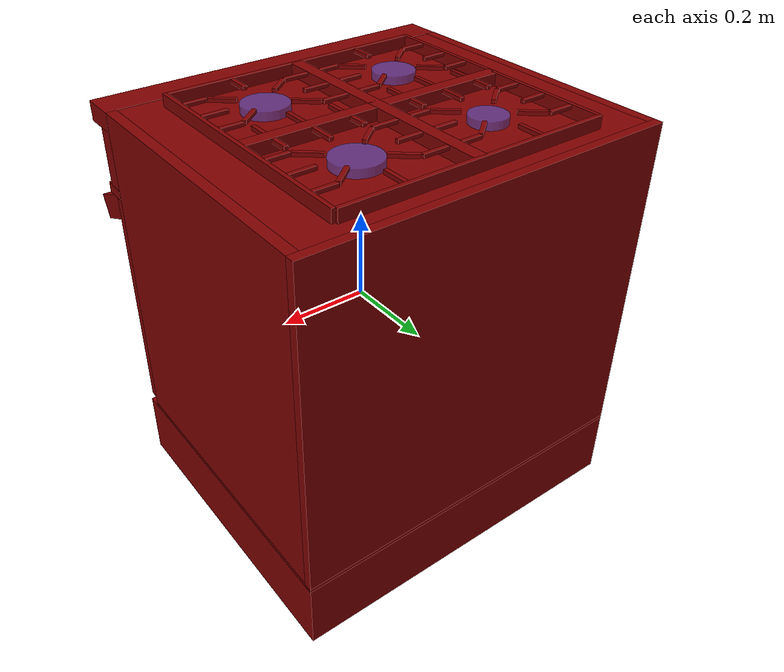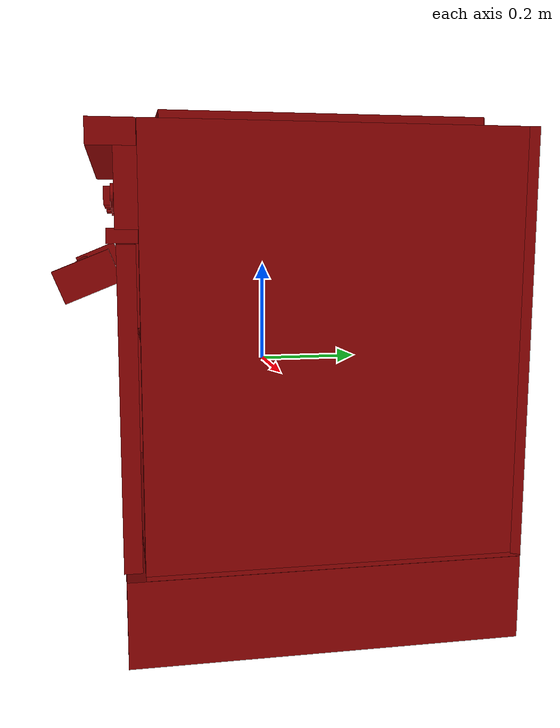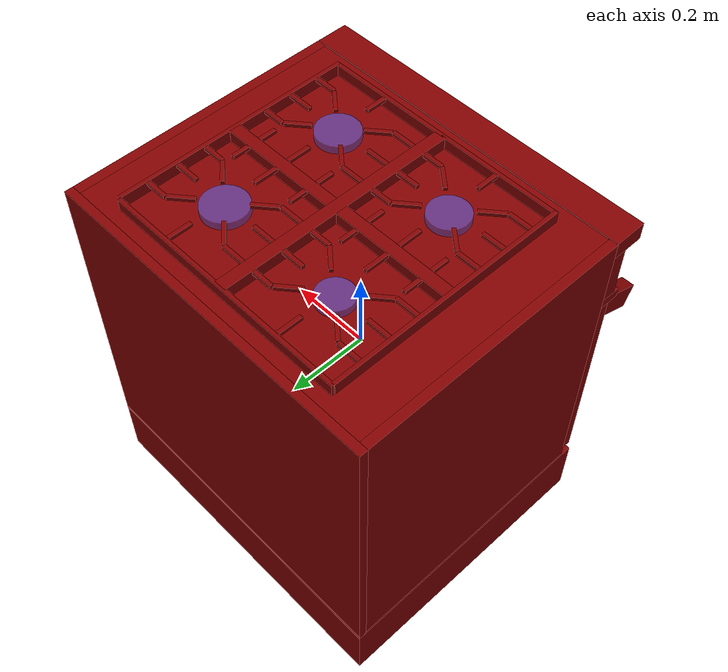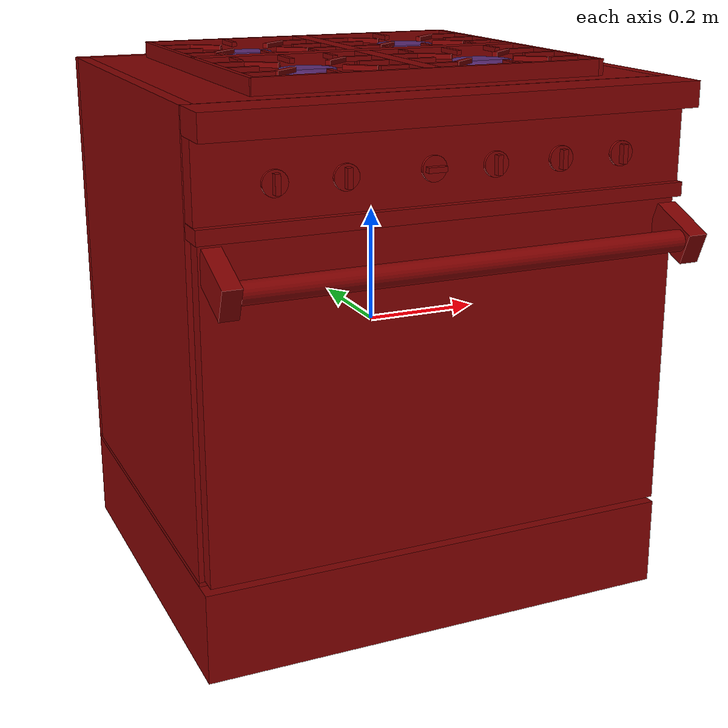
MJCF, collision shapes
<?xml version='1.0' encoding='UTF-8'?>
<mujoco model="model">
  <option timestep="0.002" gravity="0.0 0.0 -9.81"/>
  <compiler angle="radian"/>
  <asset>
    <mesh file="visuals/knob_front_left.obj" name="knob_front_left_vis"/>
    <mesh file="visuals/knob_front_right.obj" name="knob_front_right_vis"/>
    <mesh file="visuals/knob_rear_left.obj" name="knob_rear_left_vis"/>
    <mesh file="visuals/knob_rear_right.obj" name="knob_rear_right_vis"/>
    <mesh file="visuals/Body001.obj" name="Body001_vis"/>
    <mesh file="visuals/Door001.obj" name="Door001_vis"/>
    <mesh file="visuals/Door001_Clear.obj" name="Door001_Clear_vis"/>
    <mesh file="visuals/Knob001.obj" name="Knob001_vis"/>
    <mesh file="visuals/Knob002.obj" name="Knob002_vis"/>
    <mesh file="visuals/Shelf001.obj" name="Shelf001_vis"/>
    <texture file="visuals/T_BC001.png" name="Body001_material" type="2d"/>
    <material name="Body001_material" rgba="1 1 1 1.0" texture="Body001_material" shininess="2" specular="2"/>
    <texture file="visuals/T_BC001.png" name="knob_front_left_material" type="2d"/>
    <material name="knob_front_left_material" rgba="1 1 1 1.0" texture="knob_front_left_material" shininess="5" specular="5"/>
    <texture file="visuals/T_BC001.png" name="knob_front_right_material" type="2d"/>
    <material name="knob_front_right_material" rgba="1 1 1 1.0" texture="knob_front_right_material" shininess="5" specular="5"/>
    <texture file="visuals/T_BC001.png" name="knob_rear_left_material" type="2d"/>
    <material name="knob_rear_left_material" rgba="1 1 1 1.0" texture="knob_rear_left_material" shininess="5" specular="5"/>
    <texture file="visuals/T_BC001.png" name="knob_rear_right_material" type="2d"/>
    <material name="knob_rear_right_material" rgba="1 1 1 1.0" texture="knob_rear_right_material" shininess="5" specular="5"/>
    <texture file="visuals/T_BC001.png" name="Door001_material" type="2d"/>
    <material name="Door001_material" rgba="1 1 1 1.0" texture="Door001_material" shininess="0.5" specular="0.3"/>
    <material name="Door001_Clear_material" rgba="0.03637736663222313 0.03637736663222313 0.03637736663222313 0.75" shininess="0.5962963700294495" specular="0.3103448502657381"/>
    <texture file="visuals/T_BC001.png" name="Knob001_material" type="2d"/>
    <material name="Knob001_material" rgba="1 1 1 1.0" texture="Knob001_material" shininess="5" specular="5"/>
    <texture file="visuals/T_BC001.png" name="Knob002_material" type="2d"/>
    <material name="Knob002_material" rgba="1 1 1 1.0" texture="Knob002_material" shininess="5" specular="5"/>
    <texture file="visuals/T_BC001.png" name="Shelf001_material" type="2d"/>
    <material name="Shelf001_material" rgba="1 1 1 1.0" texture="Shelf001_material" shininess="15" specular="15"/>
  </asset>
  <default>
    <default class="visual">
      <geom conaffinity="0" contype="0" group="1" type="mesh"/>
    </default>
    <default class="collision">
      <geom group="0" rgba="0.5 0 0 0.5"/>
    </default>
    <default class="spawn">
      <geom group="0" rgba="1 1 1 0.5" contype="0" conaffinity="0"/>
      <site group="0" rgba="1 1 1 0.5"/>
    </default>
    <default class="region">
      <geom group="1" conaffinity="0" contype="0" rgba="0 1 0 0"/>
    </default>
  </default>
  <worldbody>
    <body>
      <body name="object">
        <geom mesh="Body001_vis" type="mesh" solimp="0.998 0.998 0.001" solref="0.001 1" friction="0.95 0.3 0.1" class="visual" material="Body001_material"/>
        <geom class="collision" type="box" pos="0.000378 0.049515 -0.388856" size="0.41547325253486633 0.35028234124183655 0.0773010328412056" quat="1.0 0.0 0.0 0.0" density="1000.0"/>
        <geom class="collision" type="box" pos="0.001387 -0.287103 0.333889" size="0.4144640564918518 0.018988726660609245 0.06398481130599976" quat="1.0 0.0 0.0 0.0" density="1000.0"/>
        <geom class="collision" type="box" pos="-0.000711 0.057559 0.343548" size="0.39315736293792725 0.3247782289981842 0.09669910371303558" quat="1.0 0.0 0.0 0.0" density="1000.0"/>
        <geom class="collision" type="box" pos="-0.403659 0.055687 0.068292" size="0.011437241919338703 0.32465922832489014 0.3719550669193268" quat="1.0 0.0 0.0 0.0" density="1000.0"/>
        <geom class="collision" type="box" pos="0.000378 0.389921 0.064592" size="0.41547325253486633 0.009875659830868244 0.37565553188323975" quat="1.0 0.0 0.0 0.0" density="1000.0"/>
        <geom class="collision" type="box" pos="0.000986 -0.309003 0.418958" size="0.4148644208908081 0.03909192979335785 0.02129073068499565" quat="1.0 0.0 0.0 0.0" density="1000.0"/>
        <geom class="collision" type="box" pos="0.000986 -0.294806 0.260053" size="0.4148644208908081 0.02489509992301464 0.011899310164153576" quat="1.0 0.0 0.0 0.0" density="1000.0"/>
        <geom class="collision" type="box" pos="0.403813 0.055687 0.068293" size="0.012038080021739006 0.32465511560440063 0.3719540536403656" quat="1.0 0.0 0.0 0.0" density="1000.0"/>
        <geom class="collision" type="box" pos="-0.375798 0.074226 0.000232" size="0.019609661772847176 0.30704760551452637 0.012386194430291653" quat="1.0 0.0 0.0 0.0" density="1000.0"/>
        <geom class="collision" type="box" pos="0.376623 0.074226 0.000232" size="0.019609661772847176 0.30704760551452637 0.012386194430291653" quat="1.0 0.0 0.0 0.0" density="1000.0"/>
        <geom class="collision" type="box" pos="0.000378 0.065899 -0.307179" size="0.41547325253486633 0.33389797806739807 0.004099471494555473" quat="1.0 0.0 0.0 0.0" density="1000.0"/>
        <geom class="collision" type="box" pos="-0.292757 0.057559 0.453214" size="0.004482975695282221 0.28736037015914917 0.01421328354626894" quat="1.0 0.0 0.0 0.0" density="1000.0"/>
        <geom class="collision" type="box" pos="0.306405 0.057559 0.453214" size="0.004482975695282221 0.28736037015914917 0.01421328354626894" quat="1.0 0.0 0.0 0.0" density="1000.0"/>
        <geom class="collision" type="box" pos="0.003568 0.346286 0.453214" size="0.004482975695282221 0.2986479103565216 0.01421328354626894" quat="0.70710688829422 0.0 0.0 -0.7071066498756409" density="1000.0"/>
        <geom class="collision" type="box" pos="0.003568 -0.225523 0.453214" size="0.004482975695282221 0.2986479103565216 0.01421328354626894" quat="0.70710688829422 0.0 0.0 -0.7071066498756409" density="1000.0"/>
        <geom class="collision" type="box" pos="0.003568 0.060472 0.453214" size="0.014194725081324577 0.2986479103565216 0.01421328354626894" quat="0.70710688829422 0.0 0.0 -0.7071066498756409" density="1000.0"/>
        <geom class="collision" type="box" pos="0.003568 0.060472 0.453214" size="0.014194725081324577 0.28471454977989197 0.01421328354626894" quat="7.549790126404332e-08 0.0 0.0 -1.0" density="1000.0"/>
        <geom class="collision" type="box" pos="-0.231439 0.059600 0.462512" size="0.004482975695282221 0.05542557314038277 0.0040606227703392506" quat="1.0 0.0 0.0 0.0" density="1000.0"/>
        <geom class="collision" type="box" pos="-0.064352 0.059600 0.462512" size="0.004482975695282221 0.05542557314038277 0.0040606227703392506" quat="1.0 0.0 0.0 0.0" density="1000.0"/>
        <geom class="collision" type="box" pos="0.076505 0.059600 0.462512" size="0.004482975695282221 0.05542557314038277 0.0040606227703392506" quat="1.0 0.0 0.0 0.0" density="1000.0"/>
        <geom class="collision" type="box" pos="0.245171 0.059600 0.462512" size="0.004482975695282221 0.05542557314038277 0.0040606227703392506" quat="1.0 0.0 0.0 0.0" density="1000.0"/>
        <geom class="collision" type="box" pos="0.161141 0.059600 0.462512" size="0.004482975695282221 0.07093368470668793 0.0040606227703392506" quat="1.0 0.0 0.0 0.0" density="1000.0"/>
        <geom class="collision" type="box" pos="-0.147173 0.059600 0.462512" size="0.004482975695282221 0.07093368470668793 0.0040606227703392506" quat="1.0 0.0 0.0 0.0" density="1000.0"/>
        <geom class="collision" type="box" pos="0.161141 0.314231 0.462512" size="0.004482975695282221 0.028777193278074265 0.0040606227703392506" quat="1.0 0.0 0.0 0.0" density="1000.0"/>
        <geom class="collision" type="box" pos="-0.147173 0.314231 0.462512" size="0.004482975695282221 0.028777193278074265 0.0040606227703392506" quat="1.0 0.0 0.0 0.0" density="1000.0"/>
        <geom class="collision" type="box" pos="0.161141 -0.198479 0.462512" size="0.004482975695282221 0.028777193278074265 0.0040606227703392506" quat="1.0 0.0 0.0 0.0" density="1000.0"/>
        <geom class="collision" type="box" pos="-0.147173 -0.198479 0.462512" size="0.004482975695282221 0.028777193278074265 0.0040606227703392506" quat="1.0 0.0 0.0 0.0" density="1000.0"/>
        <geom class="collision" type="box" pos="-0.262084 -0.089662 0.462512" size="0.004482975695282221 0.028777193278074265 0.0040606227703392506" quat="0.70710688829422 0.0 0.0 -0.7071066498756409" density="1000.0"/>
        <geom class="collision" type="box" pos="0.272897 -0.089662 0.462512" size="0.004482975695282221 0.028777193278074265 0.0040606227703392506" quat="0.70710688829422 0.0 0.0 -0.7071066498756409" density="1000.0"/>
        <geom class="collision" type="box" pos="0.005470 -0.089662 0.462512" size="0.004482975695282221 0.06875323504209518 0.0040606227703392506" quat="0.70710688829422 0.0 0.0 -0.7071066498756409" density="1000.0"/>
        <geom class="collision" type="box" pos="-0.262084 0.205971 0.462512" size="0.004482975695282221 0.028777193278074265 0.0040606227703392506" quat="0.70710688829422 0.0 0.0 -0.7071066498756409" density="1000.0"/>
        <geom class="collision" type="box" pos="0.272897 0.205971 0.462512" size="0.004482975695282221 0.028777193278074265 0.0040606227703392506" quat="0.70710688829422 0.0 0.0 -0.7071066498756409" density="1000.0"/>
        <geom class="collision" type="box" pos="0.005470 0.205971 0.462512" size="0.004482975695282221 0.06875323504209518 0.0040606227703392506" quat="0.70710688829422 0.0 0.0 -0.7071066498756409" density="1000.0"/>
        <geom class="collision" type="box" pos="-0.262084 0.277790 0.462512" size="0.004482975695282221 0.028777193278074265 0.0040606227703392506" quat="0.70710688829422 0.0 0.0 -0.7071066498756409" density="1000.0"/>
        <geom class="collision" type="box" pos="-0.209607 0.257498 0.462512" size="0.0044829752296209335 0.028777191415429115 0.0040606227703392506" quat="0.4226183593273163 0.0 0.0 -0.9063077569007874" density="1000.0"/>
        <geom class="collision" type="box" pos="0.046834 0.277790 0.462512" size="0.004482975695282221 0.028777193278074265 0.0040606227703392506" quat="0.70710688829422 0.0 0.0 -0.7071066498756409" density="1000.0"/>
        <geom class="collision" type="box" pos="0.099312 0.257498 0.462512" size="0.0044829752296209335 0.028777191415429115 0.0040606227703392506" quat="0.4226183593273163 0.0 0.0 -0.9063077569007874" density="1000.0"/>
        <geom class="collision" type="box" pos="-0.262084 -0.020803 0.462512" size="0.004482975695282221 0.028777193278074265 0.0040606227703392506" quat="0.70710688829422 0.0 0.0 -0.7071066498756409" density="1000.0"/>
        <geom class="collision" type="box" pos="-0.209607 -0.041094 0.462512" size="0.0044829752296209335 0.028777191415429115 0.0040606227703392506" quat="0.4226183593273163 0.0 0.0 -0.9063077569007874" density="1000.0"/>
        <geom class="collision" type="box" pos="0.046834 -0.020803 0.462512" size="0.004482975695282221 0.028777193278074265 0.0040606227703392506" quat="0.70710688829422 0.0 0.0 -0.7071066498756409" density="1000.0"/>
        <geom class="collision" type="box" pos="0.099312 -0.041094 0.462512" size="0.0044829752296209335 0.028777191415429115 0.0040606227703392506" quat="0.4226183593273163 0.0 0.0 -0.9063077569007874" density="1000.0"/>
        <geom class="collision" type="box" pos="-0.262084 -0.162791 0.462512" size="0.004482975695282221 0.028777193278074265 0.0040606227703392506" quat="5.497089244167535e-15 -0.70710688829422 -0.7071066498756409 1.067701660417697e-07" density="1000.0"/>
        <geom class="collision" type="box" pos="-0.209607 -0.142500 0.462512" size="0.004482975695282221 0.028777191415429115 0.0040606227703392506" quat="3.6517526780244225e-08 0.4226183295249939 0.9063077569007874 -1.0033114961061074e-07" density="1000.0"/>
        <geom class="collision" type="box" pos="0.046834 -0.162791 0.462512" size="0.004482975695282221 0.028777193278074265 0.0040606227703392506" quat="5.497089244167535e-15 -0.70710688829422 -0.7071066498756409 1.067701660417697e-07" density="1000.0"/>
        <geom class="collision" type="box" pos="0.099312 -0.142500 0.462512" size="0.004482975695282221 0.028777191415429115 0.0040606227703392506" quat="3.6517526780244225e-08 0.4226183295249939 0.9063077569007874 -1.0033114961061074e-07" density="1000.0"/>
        <geom class="collision" type="box" pos="-0.262084 0.135802 0.462512" size="0.004482975695282221 0.028777193278074265 0.0040606227703392506" quat="5.497089244167535e-15 -0.70710688829422 -0.7071066498756409 1.067701660417697e-07" density="1000.0"/>
        <geom class="collision" type="box" pos="-0.209607 0.156093 0.462512" size="0.004482975695282221 0.028777191415429115 0.0040606227703392506" quat="3.6517526780244225e-08 0.4226183295249939 0.9063077569007874 -1.0033114961061074e-07" density="1000.0"/>
        <geom class="collision" type="box" pos="0.046834 0.135802 0.462512" size="0.004482975695282221 0.028777193278074265 0.0040606227703392506" quat="5.497089244167535e-15 -0.70710688829422 -0.7071066498756409 1.067701660417697e-07" density="1000.0"/>
        <geom class="collision" type="box" pos="0.099312 0.156093 0.462512" size="0.004482975695282221 0.028777191415429115 0.0040606227703392506" quat="3.6517526780244225e-08 0.4226183295249939 0.9063077569007874 -1.0033114961061074e-07" density="1000.0"/>
        <geom class="collision" type="box" pos="0.279172 0.277790 0.462512" size="0.004482975695282221 0.028777193278074265 0.0040606227703392506" quat="1.483911375999014e-07 -0.7071068286895752 0.7071067094802856 4.16210070852685e-08" density="1000.0"/>
        <geom class="collision" type="box" pos="0.226695 0.257498 0.462512" size="0.004482975695282221 0.028777193278074265 0.0040606227703392506" quat="1.9945326812376152e-07 -0.9063077569007874 0.4226183593273163 -3.2987554021701726e-08" density="1000.0"/>
        <geom class="collision" type="box" pos="-0.029747 0.277790 0.462512" size="0.004482975695282221 0.028777193278074265 0.0040606227703392506" quat="1.483911375999014e-07 -0.7071068286895752 0.7071067094802856 4.16210070852685e-08" density="1000.0"/>
        <geom class="collision" type="box" pos="-0.082224 0.257498 0.462512" size="0.004482975695282221 0.028777193278074265 0.0040606227703392506" quat="1.9945326812376152e-07 -0.9063077569007874 0.4226183593273163 -3.2987554021701726e-08" density="1000.0"/>
        <geom class="collision" type="box" pos="0.279172 -0.020803 0.462512" size="0.004482975695282221 0.028777193278074265 0.0040606227703392506" quat="1.483911375999014e-07 -0.7071068286895752 0.7071067094802856 4.16210070852685e-08" density="1000.0"/>
        <geom class="collision" type="box" pos="0.226695 -0.041094 0.462512" size="0.004482975695282221 0.028777193278074265 0.0040606227703392506" quat="1.9945326812376152e-07 -0.9063077569007874 0.4226183593273163 -3.2987554021701726e-08" density="1000.0"/>
        <geom class="collision" type="box" pos="-0.029747 -0.020803 0.462512" size="0.004482975695282221 0.028777193278074265 0.0040606227703392506" quat="1.483911375999014e-07 -0.7071068286895752 0.7071067094802856 4.16210070852685e-08" density="1000.0"/>
        <geom class="collision" type="box" pos="-0.082224 -0.041094 0.462512" size="0.004482975695282221 0.028777193278074265 0.0040606227703392506" quat="1.9945326812376152e-07 -0.9063077569007874 0.4226183593273163 -3.2987554021701726e-08" density="1000.0"/>
        <geom class="collision" type="box" pos="0.279172 -0.162791 0.462512" size="0.004482975695282221 0.028777193278074265 0.0040606227703392506" quat="0.7071068286895752 2.1020835561103013e-07 -8.65739195887727e-08 0.7071067094802856" density="1000.0"/>
        <geom class="collision" type="box" pos="0.226695 -0.142500 0.462512" size="0.004482975695282221 0.028777191415429115 0.0040606227703392506" quat="0.9063077569007874 1.827300337708948e-07 -1.4571612894087593e-07 0.4226183295249939" density="1000.0"/>
        <geom class="collision" type="box" pos="-0.029747 -0.162791 0.462512" size="0.004482975695282221 0.028777193278074265 0.0040606227703392506" quat="0.7071068286895752 2.1020835561103013e-07 -8.65739195887727e-08 0.7071067094802856" density="1000.0"/>
        <geom class="collision" type="box" pos="-0.082224 -0.142500 0.462512" size="0.004482975695282221 0.028777191415429115 0.0040606227703392506" quat="0.9063077569007874 1.827300337708948e-07 -1.4571612894087593e-07 0.4226183295249939" density="1000.0"/>
        <geom class="collision" type="box" pos="0.279172 0.135802 0.462512" size="0.004482975695282221 0.028777193278074265 0.0040606227703392506" quat="0.7071068286895752 2.1020835561103013e-07 -8.65739195887727e-08 0.7071067094802856" density="1000.0"/>
        <geom class="collision" type="box" pos="0.226695 0.156093 0.462512" size="0.004482975695282221 0.028777191415429115 0.0040606227703392506" quat="0.9063077569007874 1.827300337708948e-07 -1.4571612894087593e-07 0.4226183295249939" density="1000.0"/>
        <geom class="collision" type="box" pos="-0.029747 0.135802 0.462512" size="0.004482975695282221 0.028777193278074265 0.0040606227703392506" quat="0.7071068286895752 2.1020835561103013e-07 -8.65739195887727e-08 0.7071067094802856" density="1000.0"/>
        <geom class="collision" type="box" pos="-0.082224 0.156093 0.462512" size="0.004482975695282221 0.028777191415429115 0.0040606227703392506" quat="0.9063077569007874 1.827300337708948e-07 -1.4571612894087593e-07 0.4226183295249939" density="1000.0"/>
        <body name="knob_front_left">
          <joint axis="0.0 -1.0 0.0" pos="-0.290305 -0.314382 0.326599" limited="true" name="knob_front_left_joint" range="0.0 3.752457891787808" type="hinge" damping="0.05" armature="0.001"/>
          <geom mesh="knob_front_left_vis" type="mesh" solimp="0.998 0.998 0.001" solref="0.001 1" friction="0.95 0.3 0.1" class="visual" material="knob_front_left_material"/>
          <geom class="collision" type="cylinder" pos="-0.290398 -0.309323 0.326620" size="0.020548343658447266 0.0026434955652803183" quat="0.7071067094802856 0.70710688829422 0.0 0.0" density="1000.0"/>
          <geom class="collision" type="box" pos="-0.290278 -0.317559 0.326709" size="0.004265603609383106 0.00580366887152195 0.015670906752347946" quat="1.0 0.0 0.0 0.0" density="1000.0" name="knob_front_left_main"/>
        </body>
        <body name="knob_front_right">
          <joint axis="0.0 -1.0 0.0" pos="0.299085 -0.314382 0.326599" limited="true" name="knob_front_right_joint" range="0.0 3.752457891787808" type="hinge" damping="0.05" armature="0.001"/>
          <geom mesh="knob_front_right_vis" type="mesh" solimp="0.998 0.998 0.001" solref="0.001 1" friction="0.95 0.3 0.1" class="visual" material="knob_front_right_material"/>
          <geom class="collision" type="box" pos="0.298937 -0.317559 0.326709" size="0.004265603609383106 0.00580366887152195 0.015670906752347946" quat="1.0 0.0 0.0 0.0" density="1000.0" name="knob_front_right_main"/>
          <geom class="collision" type="cylinder" pos="0.298817 -0.309323 0.326620" size="0.020548343658447266 0.0026434955652803183" quat="0.7071067094802856 0.70710688829422 0.0 0.0" density="1000.0"/>
        </body>
        <body name="knob_rear_left">
          <joint axis="0.0 -1.0 0.0" pos="-0.178579 -0.314382 0.326599" limited="true" name="knob_rear_left_joint" range="0.0 3.752457891787808" type="hinge" damping="0.05" armature="0.001"/>
          <geom mesh="knob_rear_left_vis" type="mesh" solimp="0.998 0.998 0.001" solref="0.001 1" friction="0.95 0.3 0.1" class="visual" material="knob_rear_left_material"/>
          <geom class="collision" type="box" pos="-0.178708 -0.317559 0.326709" size="0.004265603609383106 0.00580366887152195 0.015670906752347946" quat="1.0 0.0 0.0 0.0" density="1000.0" name="knob_rear_left_main"/>
          <geom class="collision" type="cylinder" pos="-0.178829 -0.309323 0.326620" size="0.020548343658447266 0.0026434955652803183" quat="0.7071067094802856 0.70710688829422 0.0 0.0" density="1000.0"/>
        </body>
        <body name="knob_rear_right">
          <joint axis="0.0 -1.0 0.0" pos="0.187105 -0.314382 0.326599" limited="true" name="knob_rear_right_joint" range="0.0 3.752457891787808" type="hinge" damping="0.05" armature="0.001"/>
          <geom mesh="knob_rear_right_vis" type="mesh" solimp="0.998 0.998 0.001" solref="0.001 1" friction="0.95 0.3 0.1" class="visual" material="knob_rear_right_material"/>
          <geom class="collision" type="box" pos="0.187101 -0.317559 0.326709" size="0.004265603609383106 0.00580366887152195 0.015670906752347946" quat="1.0 0.0 0.0 0.0" density="1000.0" name="knob_rear_right_main"/>
          <geom class="collision" type="cylinder" pos="0.186980 -0.309323 0.326620" size="0.020548343658447266 0.0026434955652803183" quat="0.7071067094802856 0.70710688829422 0.0 0.0" density="1000.0"/>
        </body>
        <body name="Door001">
          <joint axis="1.0 0.0 0.0" pos="0.000914 -0.299797 -0.297788" limited="true" name="Door001_joint" range="0.0 1.5707963267948966" type="hinge" damping="1" frictionloss="1" armature=".01" stiffness="1" springref="-1.5"/>
          <geom mesh="Door001_vis" type="mesh" solimp="0.998 0.998 0.001" solref="0.001 1" friction="0.95 0.3 0.1" class="visual" material="Door001_material"/>
          <geom class="collision" type="box" pos="0.001129 -0.289026 -0.025834" size="0.4087790548801422 0.015568030066788197 0.27275004982948303" quat="1.0 0.0 0.0 0.0" density="1000.0"/>
          <geom class="collision" type="box" pos="0.389542 -0.350517 0.196223" size="0.017010247334837914 0.04774216562509537 0.02735132724046707" quat="0.9817447066307068 0.19020341336727142 1.8855143657421613e-18 -3.4843584851573193e-19" density="1000.0"/>
          <geom class="collision" type="cylinder" pos="-0.002344 -0.377732 0.190931" size="0.017841855064034462 0.39096418023109436" quat="0.7071068286895752 -0.0 0.7071067690849304 0.0" density="1000.0"/>
          <geom class="collision" type="box" pos="-0.388609 -0.346771 0.198170" size="0.015407290309667587 0.05015219748020172 0.027351271361112595" quat="0.981132447719574 0.19333681464195251 1.630948539612232e-17 -2.4072808709865224e-18" density="1000.0"/>
          <body name="Door001_Clear">
            <geom mesh="Door001_Clear_vis" type="mesh" solimp="0.998 0.998 0.001" solref="0.001 1" friction="0.95 0.3 0.1" class="visual" material="Door001_Clear_material"/>
            <geom class="collision" type="box" pos="0.009610 -0.291978 0.019180" size="0.31197333335876465 0.003127892967313528 0.14276011288166046" quat="1.0 0.0 0.0 0.0" density="1000.0"/>
          </body>
        </body>
        <body name="Knob001">
          <joint axis="0.0 1.0 0.0" pos="-0.035344 -0.314382 0.328127" limited="true" name="Knob001_joint" range="0.0 5.235987755982989" type="hinge" damping="0.05" armature="0.001"/>
          <geom mesh="Knob001_vis" type="mesh" solimp="0.998 0.998 0.001" solref="0.001 1" friction="0.95 0.3 0.1" class="visual" material="Knob001_material"/>
          <geom class="collision" type="box" pos="-0.035339 -0.317559 0.328047" size="0.015670908614993095 0.00580366887152195 0.004265605006366968" quat="1.0 0.0 0.0 0.0" density="1000.0"/>
          <geom class="collision" type="cylinder" pos="-0.035460 -0.309323 0.327957" size="0.020548343658447266 0.0026434955652803183" quat="0.7071067094802856 0.70710688829422 0.0 0.0" density="1000.0"/>
        </body>
        <body name="Knob002">
          <joint axis="0.0 1.0 0.0" pos="0.071042 -0.314382 0.326599" limited="true" name="Knob002_joint" range="0.0 5.585053606381854" type="hinge" damping="0.05" armature="0.001"/>
          <geom mesh="Knob002_vis" type="mesh" solimp="0.998 0.998 0.001" solref="0.001 1" friction="0.95 0.3 0.1" class="visual" material="Knob002_material"/>
          <geom class="collision" type="box" pos="0.070985 -0.317559 0.326709" size="0.004265603609383106 0.00580366887152195 0.015670906752347946" quat="1.0 0.0 0.0 0.0" density="1000.0"/>
          <geom class="collision" type="cylinder" pos="0.070864 -0.309323 0.326620" size="0.020548343658447266 0.0026434955652803183" quat="0.7071067094802856 0.70710688829422 0.0 0.0" density="1000.0"/>
        </body>
        <body name="Shelf001">
          <joint axis="0.0 -1.0 0.0" pos="-0.002995 0.057993 0.020161" limited="true" name="Shelf001_joint" range="0.0 0.45" type="slide" damping="1" frictionloss="1" armature=".01" stiffness="0.05"/>
          <geom mesh="Shelf001_vis" type="mesh" solimp="0.998 0.998 0.001" solref="0.001 1" friction="0.95 0.3 0.1" class="visual" material="Shelf001_material"/>
          <geom class="collision" type="box" pos="-0.002701 0.058137 0.020076" size="0.3731922209262848 0.3125598132610321 0.006199235562235117" quat="1.0 0.0 0.0 0.0" density="1000.0"/>
        </body>
        <site type="cylinder" rgba="0.3 0.4 1 0.5" size="0.046472884714603424 0.00901454221457243" pos="-0.149880 -0.087730 0.449579" name="burner_on_front_left"/>
        <site type="cylinder" rgba="0.3 0.4 1 0.5" size="0.050098031759262085 0.009455353021621704" pos="0.162227 -0.091116 0.449503" name="burner_on_front_right"/>
        <site type="cylinder" rgba="0.3 0.4 1 0.5" size="0.04051912948489189 0.009307309053838253" pos="-0.147339 0.204071 0.448522" name="burner_on_rear_left"/>
        <site type="cylinder" rgba="0.3 0.4 1 0.5" size="0.05169439688324928 0.009138042107224464" pos="0.160306 0.205131 0.449754" name="burner_on_rear_right"/>
        <geom class="region" name="reg_int" type="box" pos="0.00037750000000000283 0.056083999999999995 -0.025535500000000017" size="0.3927385 0.326055 0.2793785"/>
        <site name="burner_front_left_place_site" type="cylinder" rgba="0.3 0.4 1 0" size="0.046472884714603424 0.00901454221457243" pos="-0.149880 -0.087730 0.449579"/>
        <site name="burner_front_right_place_site" type="cylinder" rgba="0.3 0.4 1 0" size="0.050098031759262085 0.009455353021621704" pos="0.162227 -0.091116 0.449503"/>
        <site name="burner_rear_left_place_site" type="cylinder" rgba="0.3 0.4 1 0" size="0.04051912948489189 0.009307309053838253" pos="-0.147339 0.204071 0.448522"/>
        <site name="burner_rear_right_place_site" type="cylinder" rgba="0.3 0.4 1 0" size="0.05169439688324928 0.009138042107224464" pos="0.160306 0.205131 0.449754"/>
        <geom class="region" name="reg_main" type="box" pos="0.0 0.04683700000000002 -0.012953999999999993" size="0.415851 0.35296 0.45320099999999996"/>
      </body>
    </body>
  </worldbody>
  <actuator>
    <motor name="knob_front_left_joint_actuator" joint="knob_front_left_joint" gear="10"/>
    <motor name="knob_front_right_joint_actuator" joint="knob_front_right_joint" gear="10"/>
    <motor name="knob_rear_left_joint_actuator" joint="knob_rear_left_joint" gear="10"/>
    <motor name="knob_rear_right_joint_actuator" joint="knob_rear_right_joint" gear="10"/>
    <motor name="Door001_joint_actuator" joint="Door001_joint" gear="50"/>
    <motor name="Knob001_joint_actuator" joint="Knob001_joint" gear="50"/>
    <motor name="Knob002_joint_actuator" joint="Knob002_joint" gear="50"/>
    <motor name="Shelf001_joint_actuator" joint="Shelf001_joint" gear="50"/>
  </actuator>
</mujoco>
